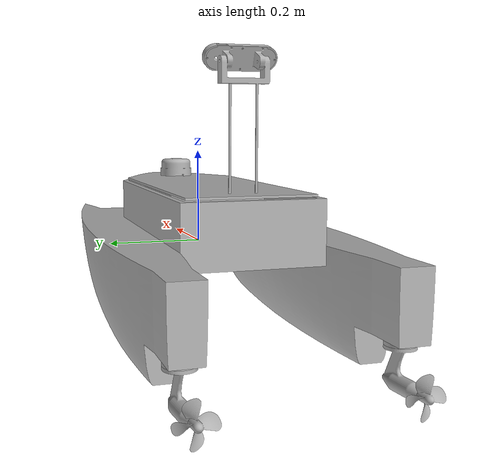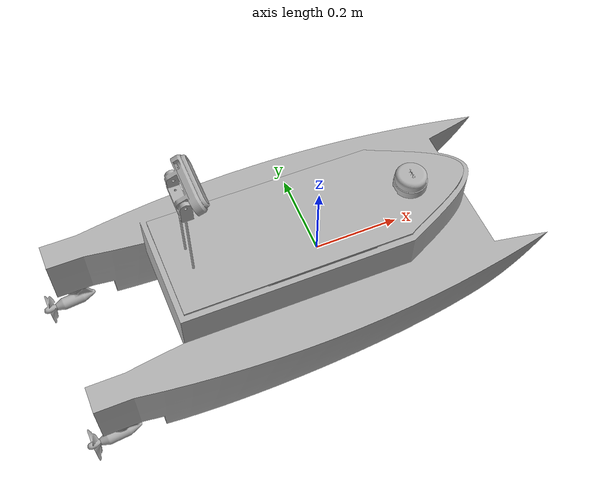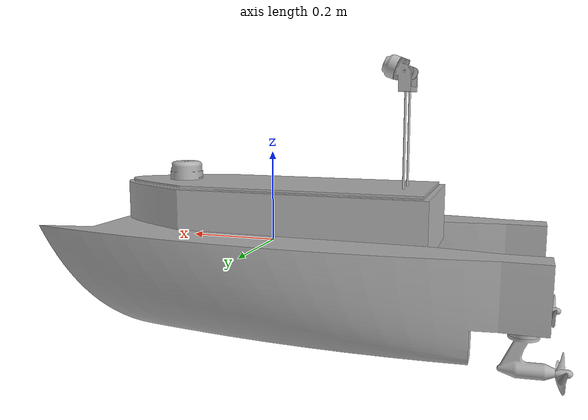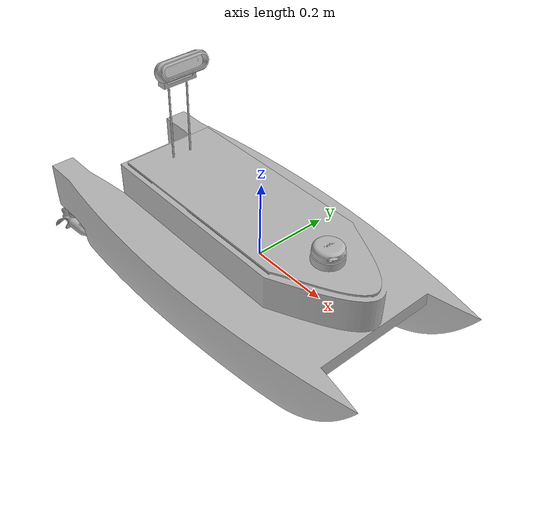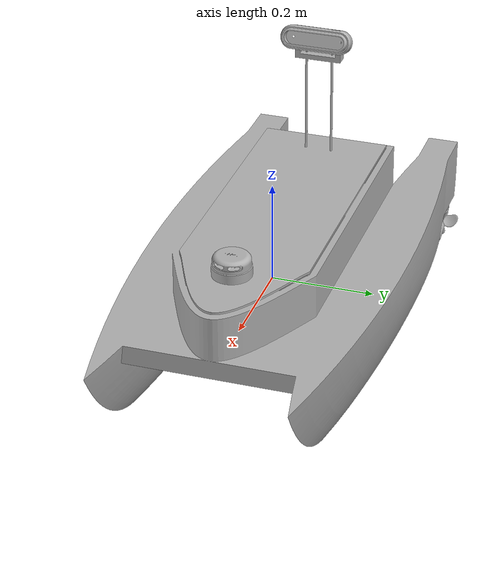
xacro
<?xml version="1.0" ?>
<robot name="testship" xmlns:xacro="http://www.ros.org/wiki/xacro">

<xacro:include filename="$(find testship_description)/urdf/materials.xacro" />
<xacro:include filename="$(find testship_description)/urdf/testship.trans" />
<xacro:include filename="$(find testship_description)/urdf/testship.gazebo" />
<link name="base_link">
  <inertial>
    <origin xyz="-0.08105870889525456 -0.00011098977657938048 -0.018183020198951655" rpy="0 0 0"/>
    <mass value="24.63020025957244"/>
    <inertia ixx="0.766917" iyy="1.397795" izz="1.945279" ixy="0.000264" iyz="0.000272" ixz="-0.062443"/>
  </inertial>
  <visual>
    <origin xyz="0 0 0" rpy="0 0 0"/>
    <geometry>
      <mesh filename="package://testship_description/meshes/base_link.stl" scale="0.01 0.01 0.01"/>
    </geometry>
    <material name="silver"/>
  </visual>
  <collision>
    <origin xyz="0 0 0" rpy="0 0 0"/>
    <geometry>
      <mesh filename="package://testship_description/meshes/base_link.stl" scale="0.01 0.01 0.01"/>
    </geometry>
  </collision>
</link>

<link name="top_1">
  <inertial>
    <origin xyz="-0.03384261607519356 6.8451838974255e-05 0.0022500000000004183" rpy="0 0 0"/>
    <mass value="0.34029539991835445"/>
    <inertia ixx="0.001651" iyy="0.01217" izz="0.013819" ixy="-6e-06" iyz="0.0" ixz="0.0"/>
  </inertial>
  <visual>
    <origin xyz="0.0 -0.0 -0.1275" rpy="0 0 0"/>
    <geometry>
      <mesh filename="package://testship_description/meshes/top_1.stl" scale="0.01 0.01 0.01"/>
    </geometry>
    <material name="silver"/>
  </visual>
  <collision>
    <origin xyz="0.0 -0.0 -0.1275" rpy="0 0 0"/>
    <geometry>
      <mesh filename="package://testship_description/meshes/top_1.stl" scale="0.01 0.01 0.01"/>
    </geometry>
  </collision>
</link>

<link name="leftphcir_1">
  <inertial>
    <origin xyz="-2.1291291851799343e-07 -9.10812633647673e-09 -0.03383205917468599" rpy="0 0 0"/>
    <mass value="0.23329485266794953"/>
    <inertia ixx="7.5e-05" iyy="7.5e-05" izz="5.7e-05" ixy="-0.0" iyz="-0.0" ixz="0.0"/>
  </inertial>
  <visual>
    <origin xyz="0.55006 -0.1875 0.0525" rpy="0 0 0"/>
    <geometry>
      <mesh filename="package://testship_description/meshes/leftphcir_1.stl" scale="0.01 0.01 0.01"/>
    </geometry>
    <material name="silver"/>
  </visual>
  <collision>
    <origin xyz="0.55006 -0.1875 0.0525" rpy="0 0 0"/>
    <geometry>
      <mesh filename="package://testship_description/meshes/leftphcir_1.stl" scale="0.01 0.01 0.01"/>
    </geometry>
  </collision>
</link>

<link name="rightphcir_1">
  <inertial>
    <origin xyz="-2.1291291818492653e-07 9.109273862994982e-09 -0.03383205917468524" rpy="0 0 0"/>
    <mass value="0.23329485266794966"/>
    <inertia ixx="7.5e-05" iyy="7.5e-05" izz="5.7e-05" ixy="-0.0" iyz="-0.0" ixz="0.0"/>
  </inertial>
  <visual>
    <origin xyz="0.55006 0.1875 0.0525" rpy="0 0 0"/>
    <geometry>
      <mesh filename="package://testship_description/meshes/rightphcir_1.stl" scale="0.01 0.01 0.01"/>
    </geometry>
    <material name="silver"/>
  </visual>
  <collision>
    <origin xyz="0.55006 0.1875 0.0525" rpy="0 0 0"/>
    <geometry>
      <mesh filename="package://testship_description/meshes/rightphcir_1.stl" scale="0.01 0.01 0.01"/>
    </geometry>
  </collision>
</link>

<link name="lidar_1">
  <inertial>
    <origin xyz="-0.000564819009046702 -1.4628926966516603e-05 0.019299145700540254" rpy="0 0 0"/>
    <mass value="1.2982579906067508"/>
    <inertia ixx="0.000618" iyy="0.00059" izz="0.000863" ixy="0.0" iyz="0.0" ixz="1.7e-05"/>
  </inertial>
  <visual>
    <origin xyz="-0.220557 0.005378 -0.132" rpy="0 0 0"/>
    <geometry>
      <mesh filename="package://testship_description/meshes/lidar_1.stl" scale="0.01 0.01 0.01"/>
    </geometry>
    <material name="silver"/>
  </visual>
  <collision>
    <origin xyz="-0.220557 0.005378 -0.132" rpy="0 0 0"/>
    <geometry>
      <mesh filename="package://testship_description/meshes/lidar_1.stl" scale="0.01 0.01 0.01"/>
    </geometry>
  </collision>
</link>

<link name="camerastand_1">
  <inertial>
    <origin xyz="0.003431675563682346 0.026010289854442734 0.21468634185462265" rpy="0 0 0"/>
    <mass value="0.03710493249188583"/>
    <inertia ixx="0.000118" iyy="8.1e-05" izz="4.4e-05" ixy="-0.0" iyz="-0.0" ixz="-4e-06"/>
  </inertial>
  <visual>
    <origin xyz="0.3 0.026 -0.132" rpy="0 0 0"/>
    <geometry>
      <mesh filename="package://testship_description/meshes/camerastand_1.stl" scale="0.01 0.01 0.01"/>
    </geometry>
    <material name="silver"/>
  </visual>
  <collision>
    <origin xyz="0.3 0.026 -0.132" rpy="0 0 0"/>
    <geometry>
      <mesh filename="package://testship_description/meshes/camerastand_1.stl" scale="0.01 0.01 0.01"/>
    </geometry>
  </collision>
</link>

<link name="leftph_1">
  <inertial>
    <origin xyz="-0.005787798260305843 -0.0004797510100504332 -0.05043656414966752" rpy="0 0 0"/>
    <mass value="0.6260636804872378"/>
    <inertia ixx="0.00051" iyy="0.000766" izz="0.000346" ixy="-2.1e-05" iyz="-8e-06" ixz="-9.3e-05"/>
  </inertial>
  <visual>
    <origin xyz="0.55006 -0.1875 0.1" rpy="0 0 0"/>
    <geometry>
      <mesh filename="package://testship_description/meshes/leftph_1.stl" scale="0.01 0.01 0.01"/>
    </geometry>
    <material name="silver"/>
  </visual>
  <collision>
    <origin xyz="0.55006 -0.1875 0.1" rpy="0 0 0"/>
    <geometry>
      <mesh filename="package://testship_description/meshes/leftph_1.stl" scale="0.01 0.01 0.01"/>
    </geometry>
  </collision>
</link>

<link name="rightph_1">
  <inertial>
    <origin xyz="-0.005787798844029801 -0.0004797326262145907 -0.05043656364633328" rpy="0 0 0"/>
    <mass value="0.626063680487237"/>
    <inertia ixx="0.00051" iyy="0.000766" izz="0.000346" ixy="-2.1e-05" iyz="-8e-06" ixz="-9.3e-05"/>
  </inertial>
  <visual>
    <origin xyz="0.55006 0.1875 0.1" rpy="0 0 0"/>
    <geometry>
      <mesh filename="package://testship_description/meshes/rightph_1.stl" scale="0.01 0.01 0.01"/>
    </geometry>
    <material name="silver"/>
  </visual>
  <collision>
    <origin xyz="0.55006 0.1875 0.1" rpy="0 0 0"/>
    <geometry>
      <mesh filename="package://testship_description/meshes/rightph_1.stl" scale="0.01 0.01 0.01"/>
    </geometry>
  </collision>
</link>

<link name="leftprop_1">
  <inertial>
    <origin xyz="-0.01276272305920545 -0.0007090167611358 9.104481688881894e-05" rpy="0 0 0"/>
    <mass value="0.06590576270790414"/>
    <inertia ixx="1.5e-05" iyy="1.1e-05" izz="1.1e-05" ixy="0.0" iyz="-1e-06" ixz="-0.0"/>
  </inertial>
  <visual>
    <origin xyz="0.606267 -0.182841 0.1678" rpy="0 0 0"/>
    <geometry>
      <mesh filename="package://testship_description/meshes/leftprop_1.stl" scale="0.01 0.01 0.01"/>
    </geometry>
    <material name="silver"/>
  </visual>
  <collision>
    <origin xyz="0.606267 -0.182841 0.1678" rpy="0 0 0"/>
    <geometry>
      <mesh filename="package://testship_description/meshes/leftprop_1.stl" scale="0.01 0.01 0.01"/>
    </geometry>
  </collision>
</link>

<link name="rightprop_1">
  <inertial>
    <origin xyz="-0.012943919699533124 -0.0010732102971425794 9.40532622617507e-08" rpy="0 0 0"/>
    <mass value="0.06590837354443096"/>
    <inertia ixx="1.5e-05" iyy="1.1e-05" izz="1.1e-05" ixy="0.0" iyz="-0.0" ixz="-0.0"/>
  </inertial>
  <visual>
    <origin xyz="0.606267 0.192159 0.1678" rpy="0 0 0"/>
    <geometry>
      <mesh filename="package://testship_description/meshes/rightprop_1.stl" scale="0.01 0.01 0.01"/>
    </geometry>
    <material name="silver"/>
  </visual>
  <collision>
    <origin xyz="0.606267 0.192159 0.1678" rpy="0 0 0"/>
    <geometry>
      <mesh filename="package://testship_description/meshes/rightprop_1.stl" scale="0.01 0.01 0.01"/>
    </geometry>
  </collision>
</link>

<link name="depthcamera_1">
  <inertial>
    <origin xyz="0.0027434830937458354 -0.001814788507109455 0.020612533646283515" rpy="0 0 0"/>
    <mass value="0.3595663734702526"/>
    <inertia ixx="0.000774" iyy="0.000116" izz="0.000709" ixy="-6e-06" iyz="1.2e-05" ixz="2.8e-05"/>
  </inertial>
  <visual>
    <origin xyz="0.276346 -0.0 -0.360379" rpy="0 0 0"/>
    <geometry>
      <mesh filename="package://testship_description/meshes/depthcamera_1.stl" scale="0.01 0.01 0.01"/>
    </geometry>
    <material name="silver"/>
  </visual>
  <collision>
    <origin xyz="0.276346 -0.0 -0.360379" rpy="0 0 0"/>
    <geometry>
      <mesh filename="package://testship_description/meshes/depthcamera_1.stl" scale="0.01 0.01 0.01"/>
    </geometry>
  </collision>
</link>

<joint name="Rigid 34" type="fixed">
  <origin xyz="0.0 0.0 0.1275" rpy="0 0 0"/>
  <parent link="base_link"/>
  <child link="top_1"/>
</joint>

<joint name="Rigid 35" type="fixed">
  <origin xyz="-0.55006 0.1875 -0.0525" rpy="0 0 0"/>
  <parent link="base_link"/>
  <child link="leftphcir_1"/>
</joint>

<joint name="Rigid 36" type="fixed">
  <origin xyz="-0.55006 -0.1875 -0.0525" rpy="0 0 0"/>
  <parent link="base_link"/>
  <child link="rightphcir_1"/>
</joint>

<joint name="Rigid 37" type="fixed">
  <origin xyz="0.220557 -0.005378 0.0045" rpy="0 0 0"/>
  <parent link="top_1"/>
  <child link="lidar_1"/>
</joint>

<joint name="Rigid 38" type="fixed">
  <origin xyz="-0.3 -0.026 0.0045" rpy="0 0 0"/>
  <parent link="top_1"/>
  <child link="camerastand_1"/>
</joint>

<joint name="Revolute 39" type="continuous">
  <origin xyz="0.0 0.0 -0.0475" rpy="0 0 0"/>
  <parent link="leftphcir_1"/>
  <child link="leftph_1"/>
  <axis xyz="0.0 -0.0 -1.0"/>
</joint>

<joint name="Revolute 40" type="continuous">
  <origin xyz="0.0 0.0 -0.0475" rpy="0 0 0"/>
  <parent link="rightphcir_1"/>
  <child link="rightph_1"/>
  <axis xyz="0.0 -0.0 -1.0"/>
</joint>

<joint name="Revolute 41" type="continuous">
  <origin xyz="-0.056207 -0.004659 -0.0678" rpy="0 0 0"/>
  <parent link="leftph_1"/>
  <child link="leftprop_1"/>
  <axis xyz="-0.996582 -0.082608 0.0"/>
</joint>

<joint name="Revolute 42" type="continuous">
  <origin xyz="-0.056207 -0.004659 -0.0678" rpy="0 0 0"/>
  <parent link="rightph_1"/>
  <child link="rightprop_1"/>
  <axis xyz="-0.996582 -0.082608 0.0"/>
</joint>

<joint name="Rigid 43" type="fixed">
  <origin xyz="0.023654 0.026 0.228379" rpy="0 0 0"/>
  <parent link="camerastand_1"/>
  <child link="depthcamera_1"/>
</joint>

</robot>

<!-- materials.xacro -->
<robot name="testship" xmlns:xacro="http://www.ros.org/wiki/xacro" >

<material name="silver">
  <color rgba="0.700 0.700 0.700 1.000"/>
</material>

</robot>

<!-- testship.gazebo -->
<robot name="testship" xmlns:xacro="http://www.ros.org/wiki/xacro" >

<xacro:property name="body_color" value="Gazebo/Silver" />

<gazebo>
  <plugin name="control" filename="libgazebo_ros_control.so"/>
</gazebo>
<gazebo reference="base_link">
  <material>${body_color}</material>
  <mu1>0.2</mu1>
  <mu2>0.2</mu2>
  <selfCollide>true</selfCollide>
  <gravity>true</gravity>
</gazebo>

<gazebo reference="top_1">
  <material>${body_color}</material>
  <mu1>0.2</mu1>
  <mu2>0.2</mu2>
  <selfCollide>true</selfCollide>
</gazebo>

<gazebo reference="leftphcir_1">
  <material>${body_color}</material>
  <mu1>0.2</mu1>
  <mu2>0.2</mu2>
  <selfCollide>true</selfCollide>
</gazebo>

<gazebo reference="rightphcir_1">
  <material>${body_color}</material>
  <mu1>0.2</mu1>
  <mu2>0.2</mu2>
  <selfCollide>true</selfCollide>
</gazebo>

<gazebo reference="lidar_1">
  <material>${body_color}</material>
  <mu1>0.2</mu1>
  <mu2>0.2</mu2>
  <selfCollide>true</selfCollide>
</gazebo>

<gazebo reference="camerastand_1">
  <material>${body_color}</material>
  <mu1>0.2</mu1>
  <mu2>0.2</mu2>
  <selfCollide>true</selfCollide>
</gazebo>

<gazebo reference="leftph_1">
  <material>${body_color}</material>
  <mu1>0.2</mu1>
  <mu2>0.2</mu2>
  <selfCollide>true</selfCollide>
</gazebo>

<gazebo reference="rightph_1">
  <material>${body_color}</material>
  <mu1>0.2</mu1>
  <mu2>0.2</mu2>
  <selfCollide>true</selfCollide>
</gazebo>

<gazebo reference="leftprop_1">
  <material>${body_color}</material>
  <mu1>0.2</mu1>
  <mu2>0.2</mu2>
  <selfCollide>true</selfCollide>
</gazebo>

<gazebo reference="rightprop_1">
  <material>${body_color}</material>
  <mu1>0.2</mu1>
  <mu2>0.2</mu2>
  <selfCollide>true</selfCollide>
</gazebo>

<gazebo reference="depthcamera_1">
  <material>${body_color}</material>
  <mu1>0.2</mu1>
  <mu2>0.2</mu2>
  <selfCollide>true</selfCollide>
</gazebo>

</robot>
